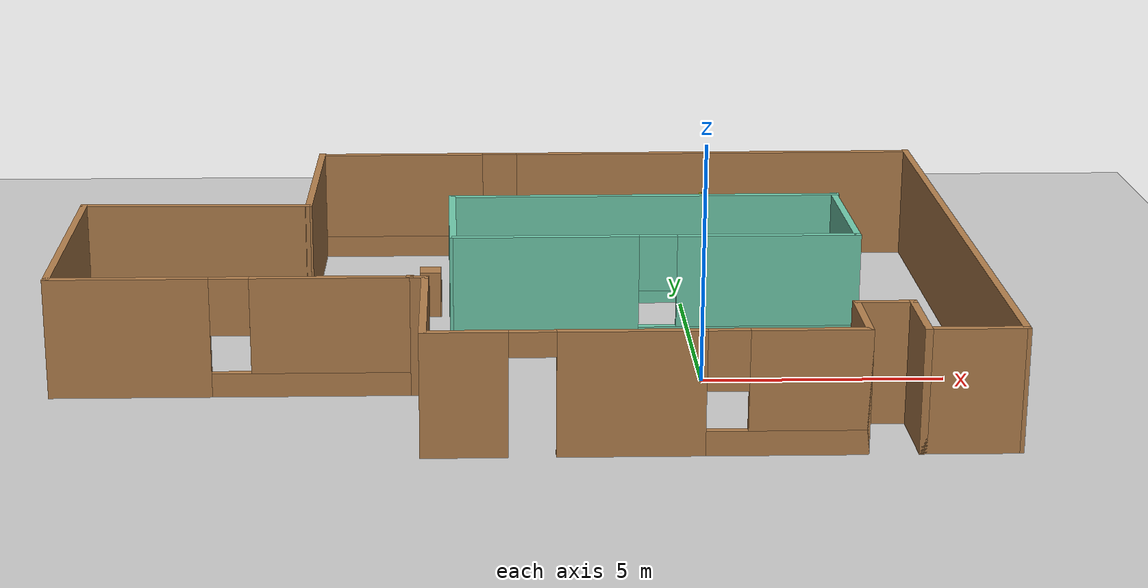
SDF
<sdf version="1.6">
 <world name="default">
  <model name="ground_plane">
   <static>1</static>
   <link name="link">
    <collision name="collision">
     <geometry><plane><normal>0 0 1</normal><size>100 100</size></plane></geometry>
     <surface><friction><ode><mu>100</mu><mu2>50</mu2></ode></friction></surface>
    </collision>
    <visual name="visual">
     <cast_shadows>0</cast_shadows>
     <geometry><plane><normal>0 0 1</normal><size>100 100</size></plane></geometry>
     <material>
      <script><uri>file://media/materials/scripts/gazebo.material</uri><name>Gazebo/Grey</name></script>
     </material>
    </visual>
   </link>
  </model>
  <model name="building">
   <pose>-3.75245 2.48047 0 0 -0 0</pose>
   <link name="Wall_1">
    <collision name="Wall_1_Collision">
     <geometry><box><size>3.5 0.15 2.5</size></box></geometry>
     <pose>0 0 1.25 0 -0 0</pose>
    </collision>
    <visual name="Wall_1_Visual">
     <pose>0 0 1.25 0 -0 0</pose>
     <geometry><box><size>3.5 0.15 2.5</size></box></geometry>
     <material>
      <script><uri>file://media/materials/scripts/gazebo.material</uri><name>Gazebo/Wood</name></script>
      <ambient>1 1 1 1</ambient>
     </material>
     <meta><layer>0</layer></meta>
    </visual>
    <pose>-1.87755 -4.85547 0 0 0 -1.5708</pose>
   </link>
   <link name="Wall_10">
    <pose>2.49783 6.46108 0 0 0 -3.13826</pose>
    <visual name="Wall_10_Visual_0">
     <pose>-2.33655 0 1.25 0 -0 0</pose>
     <geometry><box><size>9.37127 0.15 2.5</size></box></geometry>
     <material>
      <script><uri>file://media/materials/scripts/gazebo.material</uri><name>Gazebo/Wood</name></script>
      <ambient>1 1 1 1</ambient>
     </material>
     <meta><layer>0</layer></meta>
    </visual>
    <collision name="Wall_10_Collision_0">
     <geometry><box><size>9.37127 0.15 2.5</size></box></geometry>
     <pose>-2.33655 0 1.25 0 -0 0</pose>
    </collision>
    <visual name="Wall_10_Visual_1">
     <pose>4.68564 0 0.25 0 -0 0</pose>
     <geometry><box><size>4.67309 0.15 0.5</size></box></geometry>
     <material>
      <script><uri>file://media/materials/scripts/gazebo.material</uri><name>Gazebo/Wood</name></script>
      <ambient>1 1 1 1</ambient>
     </material>
     <meta><layer>0</layer></meta>
    </visual>
    <collision name="Wall_10_Collision_1">
     <geometry><box><size>4.67309 0.15 0.5</size></box></geometry>
     <pose>4.68564 0 0.25 0 -0 0</pose>
    </collision>
    <visual name="Wall_10_Visual_2">
     <pose>5.08564 0 1.5 0 -0 0</pose>
     <geometry><box><size>3.87309 0.15 2</size></box></geometry>
     <material>
      <script><uri>file://media/materials/scripts/gazebo.material</uri><name>Gazebo/Wood</name></script>
      <ambient>1 1 1 1</ambient>
     </material>
     <meta><layer>0</layer></meta>
    </visual>
    <collision name="Wall_10_Collision_2">
     <geometry><box><size>3.87309 0.15 2</size></box></geometry>
     <pose>5.08564 0 1.5 0 -0 0</pose>
    </collision>
    <visual name="Wall_10_Visual_3">
     <pose>2.74909 0 1.9 0 -0 0</pose>
     <geometry><box><size>0.8 0.15 1.2</size></box></geometry>
     <material>
      <script><uri>file://media/materials/scripts/gazebo.material</uri><name>Gazebo/Wood</name></script>
      <ambient>1 1 1 1</ambient>
     </material>
     <meta><layer>0</layer></meta>
    </visual>
    <collision name="Wall_10_Collision_3">
     <geometry><box><size>0.8 0.15 1.2</size></box></geometry>
     <pose>2.74909 0 1.9 0 -0 0</pose>
    </collision>
   </link>
   <link name="Wall_11">
    <collision name="Wall_11_Collision">
     <geometry><box><size>4.5701 0.15 2.5</size></box></geometry>
     <pose>0 0 1.25 0 -0 0</pose>
    </collision>
    <visual name="Wall_11_Visual">
     <pose>0 0 1.25 0 -0 0</pose>
     <geometry><box><size>4.5701 0.15 2.5</size></box></geometry>
     <material>
      <script><uri>file://media/materials/scripts/gazebo.material</uri><name>Gazebo/Wood</name></script>
      <ambient>1 1 1 1</ambient>
     </material>
     <meta><layer>0</layer></meta>
    </visual>
    <pose>-4.47813 4.27477 0 0 0 -1.58382</pose>
   </link>
   <link name="Wall_12">
    <collision name="Wall_12_Collision">
     <geometry><box><size>5.04168 0.15 2.5</size></box></geometry>
     <pose>0 0 1.25 0 -0 0</pose>
    </collision>
    <visual name="Wall_12_Visual">
     <pose>0 0 1.25 0 -0 0</pose>
     <geometry><box><size>5.04168 0.15 2.5</size></box></geometry>
     <material>
      <script><uri>file://media/materials/scripts/gazebo.material</uri><name>Gazebo/Wood</name></script>
      <ambient>1 1 1 1</ambient>
     </material>
     <meta><layer>0</layer></meta>
    </visual>
    <pose>-6.99831 2.12344 0 0 -0 3.11783</pose>
   </link>
   <link name="Wall_13">
    <collision name="Wall_13_Collision">
     <geometry><box><size>5.47343 0.15 2.5</size></box></geometry>
     <pose>0 0 1.25 0 -0 0</pose>
    </collision>
    <visual name="Wall_13_Visual">
     <pose>0 0 1.25 0 -0 0</pose>
     <geometry><box><size>5.47343 0.15 2.5</size></box></geometry>
     <material>
      <script><uri>file://media/materials/scripts/gazebo.material</uri><name>Gazebo/Wood</name></script>
      <ambient>1 1 1 1</ambient>
     </material>
     <meta><layer>0</layer></meta>
    </visual>
    <pose>-9.42597 -0.433839 0 0 0 -1.56422</pose>
   </link>
   <link name="Wall_14">
    <pose>-5.79302 -3.13612 0 0 -0 0.00156</pose>
    <visual name="Wall_14_Visual_0">
     <pose>-2.04094 0 1.25 0 -0 0</pose>
     <geometry><box><size>3.29907 0.15 2.5</size></box></geometry>
     <material>
      <script><uri>file://media/materials/scripts/gazebo.material</uri><name>Gazebo/Wood</name></script>
      <ambient>1 1 1 1</ambient>
     </material>
     <meta><layer>0</layer></meta>
    </visual>
    <collision name="Wall_14_Collision_0">
     <geometry><box><size>3.29907 0.15 2.5</size></box></geometry>
     <pose>-2.04094 0 1.25 0 -0 0</pose>
    </collision>
    <visual name="Wall_14_Visual_1">
     <pose>1.64953 0 0.25 0 -0 0</pose>
     <geometry><box><size>4.08187 0.15 0.5</size></box></geometry>
     <material>
      <script><uri>file://media/materials/scripts/gazebo.material</uri><name>Gazebo/Wood</name></script>
      <ambient>1 1 1 1</ambient>
     </material>
     <meta><layer>0</layer></meta>
    </visual>
    <collision name="Wall_14_Collision_1">
     <geometry><box><size>4.08187 0.15 0.5</size></box></geometry>
     <pose>1.64953 0 0.25 0 -0 0</pose>
    </collision>
    <visual name="Wall_14_Visual_2">
     <pose>2.04954 0 1.5 0 -0 0</pose>
     <geometry><box><size>3.28187 0.15 2</size></box></geometry>
     <material>
      <script><uri>file://media/materials/scripts/gazebo.material</uri><name>Gazebo/Wood</name></script>
      <ambient>1 1 1 1</ambient>
     </material>
     <meta><layer>0</layer></meta>
    </visual>
    <collision name="Wall_14_Collision_2">
     <geometry><box><size>3.28187 0.15 2</size></box></geometry>
     <pose>2.04954 0 1.5 0 -0 0</pose>
    </collision>
    <visual name="Wall_14_Visual_3">
     <pose>0.0086 0 1.9 0 -0 0</pose>
     <geometry><box><size>0.8 0.15 1.2</size></box></geometry>
     <material>
      <script><uri>file://media/materials/scripts/gazebo.material</uri><name>Gazebo/Wood</name></script>
      <ambient>1 1 1 1</ambient>
     </material>
     <meta><layer>0</layer></meta>
    </visual>
    <collision name="Wall_14_Collision_3">
     <geometry><box><size>0.8 0.15 1.2</size></box></geometry>
     <pose>0.0086 0 1.9 0 -0 0</pose>
    </collision>
   </link>
   <link name="Wall_15">
    <collision name="Wall_15_Collision">
     <geometry><box><size>0.454138 0.15 2.5</size></box></geometry>
     <pose>0 0 1.25 0 -0 0</pose>
    </collision>
    <visual name="Wall_15_Visual">
     <pose>0 0 1.25 0 -0 0</pose>
     <geometry><box><size>0.454138 0.15 2.5</size></box></geometry>
     <material>
      <script><uri>file://media/materials/scripts/gazebo.material</uri><name>Gazebo/Wood</name></script>
      <ambient>1 1 1 1</ambient>
     </material>
     <meta><layer>0</layer></meta>
    </visual>
    <pose>-2.02755 -3.15547 0 0 0 -0.165149</pose>
   </link>
   <link name="Wall_17">
    <collision name="Wall_17_Collision">
     <geometry><box><size>3.28932 0.15 2.5</size></box></geometry>
     <pose>0 0 1.25 0 -0 0</pose>
    </collision>
    <visual name="Wall_17_Visual">
     <pose>0 0 1.25 0 -0 0</pose>
     <geometry><box><size>3.28932 0.15 2.5</size></box></geometry>
     <material>
      <script><uri>file://media/materials/scripts/gazebo.material</uri><name>Gazebo/Grey</name></script>
      <ambient>0.435294 0.796078 0.67451 1</ambient>
     </material>
     <meta><layer>0</layer></meta>
    </visual>
    <pose>-1.3451 1.15404 0 0 0 -1.55965</pose>
   </link>
   <link name="Wall_18">
    <pose>2.9621 -0.409886 0 0 -0 0.001329</pose>
    <visual name="Wall_18_Visual_0">
     <pose>-2.34342 0 1.25 0 -0 0</pose>
     <geometry><box><size>3.95005 0.15 2.5</size></box></geometry>
     <material>
      <script><uri>file://media/materials/scripts/gazebo.material</uri><name>Gazebo/Grey</name></script>
      <ambient>0.435294 0.796078 0.67451 1</ambient>
     </material>
     <meta><layer>0</layer></meta>
    </visual>
    <collision name="Wall_18_Collision_0">
     <geometry><box><size>3.95005 0.15 2.5</size></box></geometry>
     <pose>-2.34342 0 1.25 0 -0 0</pose>
    </collision>
    <visual name="Wall_18_Visual_1">
     <pose>1.97503 0 0.25 0 -0 0</pose>
     <geometry><box><size>4.68684 0.15 0.5</size></box></geometry>
     <material>
      <script><uri>file://media/materials/scripts/gazebo.material</uri><name>Gazebo/Grey</name></script>
      <ambient>0.435294 0.796078 0.67451 1</ambient>
     </material>
     <meta><layer>0</layer></meta>
    </visual>
    <collision name="Wall_18_Collision_1">
     <geometry><box><size>4.68684 0.15 0.5</size></box></geometry>
     <pose>1.97503 0 0.25 0 -0 0</pose>
    </collision>
    <visual name="Wall_18_Visual_2">
     <pose>2.37503 0 1.5 0 -0 0</pose>
     <geometry><box><size>3.88684 0.15 2</size></box></geometry>
     <material>
      <script><uri>file://media/materials/scripts/gazebo.material</uri><name>Gazebo/Grey</name></script>
      <ambient>0.435294 0.796078 0.67451 1</ambient>
     </material>
     <meta><layer>0</layer></meta>
    </visual>
    <collision name="Wall_18_Collision_2">
     <geometry><box><size>3.88684 0.15 2</size></box></geometry>
     <pose>2.37503 0 1.5 0 -0 0</pose>
    </collision>
    <visual name="Wall_18_Visual_3">
     <pose>0.031604 0 1.9 0 -0 0</pose>
     <geometry><box><size>0.8 0.15 1.2</size></box></geometry>
     <material>
      <script><uri>file://media/materials/scripts/gazebo.material</uri><name>Gazebo/Grey</name></script>
      <ambient>0.435294 0.796078 0.67451 1</ambient>
     </material>
     <meta><layer>0</layer></meta>
    </visual>
    <collision name="Wall_18_Collision_3">
     <geometry><box><size>0.8 0.15 1.2</size></box></geometry>
     <pose>0.031604 0 1.9 0 -0 0</pose>
    </collision>
   </link>
   <link name="Wall_19">
    <collision name="Wall_19_Collision">
     <geometry><box><size>3.28932 0.15 2.5</size></box></geometry>
     <pose>0 0 1.25 0 -0 0</pose>
    </collision>
    <visual name="Wall_19_Visual">
     <pose>0 0 1.25 0 -0 0</pose>
     <geometry><box><size>3.28932 0.15 2.5</size></box></geometry>
     <material>
      <script><uri>file://media/materials/scripts/gazebo.material</uri><name>Gazebo/Grey</name></script>
      <ambient>0.435294 0.796078 0.67451 1</ambient>
     </material>
     <meta><layer>0</layer></meta>
    </visual>
    <pose>7.18805 1.2003 0 0 -0 1.58194</pose>
   </link>
   <link name="Wall_2">
    <pose>2.29745 -6.53047 0 0 -0 0</pose>
    <visual name="Wall_2_Visual_0">
     <pose>-3.41172 0 1.25 0 -0 0</pose>
     <geometry><box><size>1.67657 0.15 2.5</size></box></geometry>
     <material>
      <script><uri>file://media/materials/scripts/gazebo.material</uri><name>Gazebo/Wood</name></script>
      <ambient>1 1 1 1</ambient>
     </material>
     <meta><layer>0</layer></meta>
    </visual>
    <collision name="Wall_2_Collision_0">
     <geometry><box><size>1.67657 0.15 2.5</size></box></geometry>
     <pose>-3.41172 0 1.25 0 -0 0</pose>
    </collision>
    <visual name="Wall_2_Visual_1">
     <pose>-0.26302 0 1.25 0 -0 0</pose>
     <geometry><box><size>2.82083 0.15 2.5</size></box></geometry>
     <material>
      <script><uri>file://media/materials/scripts/gazebo.material</uri><name>Gazebo/Wood</name></script>
      <ambient>1 1 1 1</ambient>
     </material>
     <meta><layer>0</layer></meta>
    </visual>
    <collision name="Wall_2_Collision_1">
     <geometry><box><size>2.82083 0.15 2.5</size></box></geometry>
     <pose>-0.26302 0 1.25 0 -0 0</pose>
    </collision>
    <visual name="Wall_2_Visual_2">
     <pose>2.6987 0 0.25 0 -0 0</pose>
     <geometry><box><size>3.10261 0.15 0.5</size></box></geometry>
     <material>
      <script><uri>file://media/materials/scripts/gazebo.material</uri><name>Gazebo/Wood</name></script>
      <ambient>1 1 1 1</ambient>
     </material>
     <meta><layer>0</layer></meta>
    </visual>
    <collision name="Wall_2_Collision_2">
     <geometry><box><size>3.10261 0.15 0.5</size></box></geometry>
     <pose>2.6987 0 0.25 0 -0 0</pose>
    </collision>
    <visual name="Wall_2_Visual_3">
     <pose>3.0987 0 1.5 0 -0 0</pose>
     <geometry><box><size>2.30261 0.15 2</size></box></geometry>
     <material>
      <script><uri>file://media/materials/scripts/gazebo.material</uri><name>Gazebo/Wood</name></script>
      <ambient>1 1 1 1</ambient>
     </material>
     <meta><layer>0</layer></meta>
    </visual>
    <collision name="Wall_2_Collision_3">
     <geometry><box><size>2.30261 0.15 2</size></box></geometry>
     <pose>3.0987 0 1.5 0 -0 0</pose>
    </collision>
    <visual name="Wall_2_Visual_4">
     <pose>1.54739 0 1.9 0 -0 0</pose>
     <geometry><box><size>0.8 0.15 1.2</size></box></geometry>
     <material>
      <script><uri>file://media/materials/scripts/gazebo.material</uri><name>Gazebo/Wood</name></script>
      <ambient>1 1 1 1</ambient>
     </material>
     <meta><layer>0</layer></meta>
    </visual>
    <collision name="Wall_2_Collision_4">
     <geometry><box><size>0.8 0.15 1.2</size></box></geometry>
     <pose>1.54739 0 1.9 0 -0 0</pose>
    </collision>
    <visual name="Wall_2_Visual_5">
     <pose>-2.12343 0 2.25 0 -0 0</pose>
     <geometry><box><size>0.9 0.15 0.5</size></box></geometry>
     <material>
      <script><uri>file://media/materials/scripts/gazebo.material</uri><name>Gazebo/Wood</name></script>
      <ambient>1 1 1 1</ambient>
     </material>
     <meta><layer>0</layer></meta>
    </visual>
    <collision name="Wall_2_Collision_5">
     <geometry><box><size>0.9 0.15 0.5</size></box></geometry>
     <pose>-2.12343 0 2.25 0 -0 0</pose>
    </collision>
   </link>
   <link name="Wall_20">
    <collision name="Wall_20_Collision">
     <geometry><box><size>8.67188 0.15 2.5</size></box></geometry>
     <pose>0 0 1.25 0 -0 0</pose>
    </collision>
    <visual name="Wall_20_Visual">
     <pose>0 0 1.25 0 -0 0</pose>
     <geometry><box><size>8.67188 0.15 2.5</size></box></geometry>
     <material>
      <script><uri>file://media/materials/scripts/gazebo.material</uri><name>Gazebo/Grey</name></script>
      <ambient>0.435294 0.796078 0.67451 1</ambient>
     </material>
     <meta><layer>0</layer></meta>
    </visual>
    <pose>2.94461 2.72924 0 0 0 -3.14027</pose>
   </link>
   <link name="Wall_3">
    <collision name="Wall_3_Collision">
     <geometry><box><size>1.75 0.15 2.5</size></box></geometry>
     <pose>0 0 1.25 0 -0 0</pose>
    </collision>
    <visual name="Wall_3_Visual">
     <pose>0 0 1.25 0 -0 0</pose>
     <geometry><box><size>1.75 0.15 2.5</size></box></geometry>
     <material>
      <script><uri>file://media/materials/scripts/gazebo.material</uri><name>Gazebo/Wood</name></script>
      <ambient>1 1 1 1</ambient>
     </material>
     <meta><layer>0</layer></meta>
    </visual>
    <pose>6.47245 -5.73047 0 0 -0 1.5708</pose>
   </link>
   <link name="Wall_4">
    <collision name="Wall_4_Collision">
     <geometry><box><size>1.25 0.15 2.5</size></box></geometry>
     <pose>0 0 1.25 0 -0 0</pose>
    </collision>
    <visual name="Wall_4_Visual">
     <pose>0 0 1.25 0 -0 0</pose>
     <geometry><box><size>1.25 0.15 2.5</size></box></geometry>
     <material>
      <script><uri>file://media/materials/scripts/gazebo.material</uri><name>Gazebo/Wood</name></script>
      <ambient>1 1 1 1</ambient>
     </material>
     <meta><layer>0</layer></meta>
    </visual>
    <pose>7.02245 -4.93047 0 0 -0 0</pose>
   </link>
   <link name="Wall_5">
    <collision name="Wall_5_Collision">
     <geometry><box><size>1.75 0.15 2.5</size></box></geometry>
     <pose>0 0 1.25 0 -0 0</pose>
    </collision>
    <visual name="Wall_5_Visual">
     <pose>0 0 1.25 0 -0 0</pose>
     <geometry><box><size>1.75 0.15 2.5</size></box></geometry>
     <material>
      <script><uri>file://media/materials/scripts/gazebo.material</uri><name>Gazebo/Wood</name></script>
      <ambient>1 1 1 1</ambient>
     </material>
     <meta><layer>0</layer></meta>
    </visual>
    <pose>7.57245 -5.73047 0 0 0 -1.5708</pose>
   </link>
   <link name="Wall_6">
    <collision name="Wall_6_Collision">
     <geometry><box><size>2 0.15 2.5</size></box></geometry>
     <pose>0 0 1.25 0 -0 0</pose>
    </collision>
    <visual name="Wall_6_Visual">
     <pose>0 0 1.25 0 -0 0</pose>
     <geometry><box><size>2 0.15 2.5</size></box></geometry>
     <material>
      <script><uri>file://media/materials/scripts/gazebo.material</uri><name>Gazebo/Wood</name></script>
      <ambient>1 1 1 1</ambient>
     </material>
     <meta><layer>0</layer></meta>
    </visual>
    <pose>8.49745 -6.53047 0 0 -0 0</pose>
   </link>
   <link name="Wall_7">
    <collision name="Wall_7_Collision">
     <geometry><box><size>13.211 0.15 2.5</size></box></geometry>
     <pose>0 0 1.25 0 -0 0</pose>
    </collision>
    <visual name="Wall_7_Visual">
     <pose>0 0 1.25 0 -0 0</pose>
     <geometry><box><size>13.211 0.15 2.5</size></box></geometry>
     <material>
      <script><uri>file://media/materials/scripts/gazebo.material</uri><name>Gazebo/Wood</name></script>
      <ambient>1 1 1 1</ambient>
     </material>
     <meta><layer>0</layer></meta>
    </visual>
    <pose>9.43373 0 0 0 -0 1.56907</pose>
   </link>
   <static>1</static>
  </model>
  <model name="cabinet">
   <static>1</static>
   <link name="cabinet_bottom_plate">
    <inertial>
     <pose>0 0 -1 0 -0 0</pose>
     <inertia><ixx>2.05</ixx><ixy>0</ixy><ixz>0</ixz><iyy>2.05</iyy><iyz>0</iyz><izz>2.05</izz></inertia>
     <mass>25</mass>
    </inertial>
    <collision name="cabinet_bottom_plate_geom">
     <pose>0 0 0.01 0 -0 0</pose>
     <geometry><box><size>0.45 0.45 0.02</size></box></geometry>
    </collision>
    <visual name="cabinet_bottom_plate_geom_visual">
     <pose>0 0 0.01 0 -0 0</pose>
     <geometry><box><size>0.45 0.45 0.02</size></box></geometry>
     <material>
      <script><uri>file://media/materials/scripts/gazebo.material</uri><name>Gazebo/Wood</name></script>
     </material>
    </visual>
    <collision name="cabinet_bottom_plate_geom_cabinet_back_plate">
     <pose>0.235 0 0.51 0 -0 0</pose>
     <geometry><box><size>0.02 0.45 1.02</size></box></geometry>
    </collision>
    <visual name="cabinet_bottom_plate_geom_cabinet_back_plate_visual">
     <pose>0.235 0 0.51 0 -0 0</pose>
     <geometry><box><size>0.02 0.45 1.02</size></box></geometry>
     <material>
      <script><uri>file://media/materials/scripts/gazebo.material</uri><name>Gazebo/Wood</name></script>
     </material>
    </visual>
    <collision name="cabinet_bottom_plate_geom_cabinet_left_plate">
     <pose>0 0.235 0.51 0 -0 0</pose>
     <geometry><box><size>0.45 0.02 1.02</size></box></geometry>
    </collision>
    <visual name="cabinet_bottom_plate_geom_cabinet_left_plate_visual">
     <pose>0 0.235 0.51 0 -0 0</pose>
     <geometry><box><size>0.45 0.02 1.02</size></box></geometry>
     <material>
      <script><uri>file://media/materials/scripts/gazebo.material</uri><name>Gazebo/Wood</name></script>
     </material>
    </visual>
    <collision name="cabinet_bottom_plate_geom_cabinet_middle_plate">
     <pose>0 0 0.51 0 -0 0</pose>
     <geometry><box><size>0.45 0.45 0.02</size></box></geometry>
    </collision>
    <visual name="cabinet_bottom_plate_geom_cabinet_middle_plate_visual">
     <pose>0 0 0.51 0 -0 0</pose>
     <geometry><box><size>0.45 0.45 0.02</size></box></geometry>
     <material>
      <script><uri>file://media/materials/scripts/gazebo.material</uri><name>Gazebo/Wood</name></script>
     </material>
    </visual>
    <collision name="cabinet_bottom_plate_geom_cabinet_right_plate">
     <pose>0 -0.235 0.51 0 -0 0</pose>
     <geometry><box><size>0.45 0.02 1.02</size></box></geometry>
    </collision>
    <visual name="cabinet_bottom_plate_geom_cabinet_right_plate_visual">
     <pose>0 -0.235 0.51 0 -0 0</pose>
     <geometry><box><size>0.45 0.02 1.02</size></box></geometry>
     <material>
      <script><uri>file://media/materials/scripts/gazebo.material</uri><name>Gazebo/Wood</name></script>
     </material>
    </visual>
    <collision name="cabinet_bottom_plate_geom_cabinet_top_plate">
     <pose>0 0 1.01 0 -0 0</pose>
     <geometry><box><size>0.45 0.45 0.02</size></box></geometry>
    </collision>
    <visual name="cabinet_bottom_plate_geom_cabinet_top_plate_visual">
     <pose>0 0 1.01 0 -0 0</pose>
     <geometry><box><size>0.45 0.45 0.02</size></box></geometry>
     <material>
      <script><uri>file://media/materials/scripts/gazebo.material</uri><name>Gazebo/Wood</name></script>
     </material>
    </visual>
   </link>
   <pose>-5.60335 4.48604 0 0 -0 0</pose>
  </model>
  <model name="simple_arm">
   <link name="arm_base">
    <inertial>
     <pose>0 0 0.00099 0 -0 0</pose>
     <inertia><ixx>1.11</ixx><ixy>0</ixy><ixz>0</ixz><iyy>100.11</iyy><iyz>0</iyz><izz>1.01</izz></inertia>
     <mass>101</mass>
    </inertial>
    <collision name="arm_base_geom">
     <pose>0 0 0.05 0 -0 0</pose>
     <geometry><box><size>1 1 0.1</size></box></geometry>
    </collision>
    <visual name="arm_base_geom_visual">
     <pose>0 0 0.05 0 -0 0</pose>
     <geometry><box><size>1 1 0.1</size></box></geometry>
     <material>
      <script><uri>file://media/materials/scripts/gazebo.material</uri><name>Gazebo/Blue</name></script>
     </material>
    </visual>
    <collision name="arm_base_geom_arm_trunk">
     <pose>0 0 0.6 0 -0 0</pose>
     <geometry><cylinder><radius>0.05</radius><length>1</length></cylinder></geometry>
    </collision>
    <visual name="arm_base_geom_arm_trunk_visual">
     <pose>0 0 0.6 0 -0 0</pose>
     <geometry><cylinder><radius>0.05</radius><length>1</length></cylinder></geometry>
     <material>
      <script><uri>file://media/materials/scripts/gazebo.material</uri><name>Gazebo/Red</name></script>
     </material>
    </visual>
   </link>
   <link name="arm_shoulder_pan">
    <pose>0 0 1.1 0 -0 0</pose>
    <inertial>
     <pose>0.045455 0 0 0 -0 0</pose>
     <inertia><ixx>0.011</ixx><ixy>0</ixy><ixz>0</ixz><iyy>0.0225</iyy><iyz>0</iyz><izz>0.0135</izz></inertia>
     <mass>1.1</mass>
    </inertial>
    <collision name="arm_shoulder_pan_geom">
     <pose>0 0 0.05 0 -0 0</pose>
     <geometry><cylinder><radius>0.05</radius><length>0.1</length></cylinder></geometry>
    </collision>
    <visual name="arm_shoulder_pan_geom_visual">
     <pose>0 0 0.05 0 -0 0</pose>
     <geometry><cylinder><radius>0.05</radius><length>0.1</length></cylinder></geometry>
     <material>
      <script><uri>file://media/materials/scripts/gazebo.material</uri><name>Gazebo/Yellow</name></script>
     </material>
    </visual>
    <collision name="arm_shoulder_pan_geom_arm_shoulder">
     <pose>0.55 0 0.05 0 -0 0</pose>
     <geometry><box><size>1 0.05 0.1</size></box></geometry>
    </collision>
    <visual name="arm_shoulder_pan_geom_arm_shoulder_visual">
     <pose>0.55 0 0.05 0 -0 0</pose>
     <geometry><box><size>1 0.05 0.1</size></box></geometry>
     <material>
      <script><uri>file://media/materials/scripts/gazebo.material</uri><name>Gazebo/Yellow</name></script>
     </material>
    </visual>
   </link>
   <link name="arm_elbow_pan">
    <pose>1.05 0 1.1 0 -0 0</pose>
    <inertial>
     <pose>0.0875 0 0.083333 0 -0 0</pose>
     <inertia>
      <ixx>0.031</ixx>
      <ixy>0</ixy>
      <ixz>0.005</ixz>
      <iyy>0.07275</iyy>
      <iyz>0</iyz>
      <izz>0.04475</izz>
     </inertia>
     <mass>1.2</mass>
    </inertial>
    <collision name="arm_elbow_pan_geom">
     <pose>0 0 0.1 0 -0 0</pose>
     <geometry><cylinder><radius>0.05</radius><length>0.2</length></cylinder></geometry>
    </collision>
    <visual name="arm_elbow_pan_geom_visual">
     <pose>0 0 0.1 0 -0 0</pose>
     <geometry><cylinder><radius>0.05</radius><length>0.2</length></cylinder></geometry>
     <material>
      <script><uri>file://media/materials/scripts/gazebo.material</uri><name>Gazebo/Red</name></script>
     </material>
    </visual>
    <collision name="arm_elbow_pan_geom_arm_elbow">
     <pose>0.3 0 0.15 0 -0 0</pose>
     <geometry><box><size>0.5 0.03 0.1</size></box></geometry>
    </collision>
    <visual name="arm_elbow_pan_geom_arm_elbow_visual">
     <pose>0.3 0 0.15 0 -0 0</pose>
     <geometry><box><size>0.5 0.03 0.1</size></box></geometry>
     <material>
      <script><uri>file://media/materials/scripts/gazebo.material</uri><name>Gazebo/Yellow</name></script>
     </material>
    </visual>
    <collision name="arm_elbow_pan_geom_arm_wrist">
     <pose>0.55 0 0.15 0 -0 0</pose>
     <geometry><cylinder><radius>0.05</radius><length>0.3</length></cylinder></geometry>
    </collision>
    <visual name="arm_elbow_pan_geom_arm_wrist_visual">
     <pose>0.55 0 0.15 0 -0 0</pose>
     <geometry><cylinder><radius>0.05</radius><length>0.3</length></cylinder></geometry>
     <material>
      <script><uri>file://media/materials/scripts/gazebo.material</uri><name>Gazebo/Red</name></script>
     </material>
    </visual>
   </link>
   <link name="arm_wrist_lift">
    <pose>1.6 0 1.05 0 -0 0</pose>
    <inertial>
     <inertia><ixx>0.01</ixx><ixy>0</ixy><ixz>0</ixz><iyy>0.01</iyy><iyz>0</iyz><izz>0.001</izz></inertia>
     <mass>0.1</mass>
    </inertial>
    <collision name="arm_wrist_lift_geom">
     <pose>0 0 0.5 0 -0 0</pose>
     <geometry><cylinder><radius>0.03</radius><length>1</length></cylinder></geometry>
    </collision>
    <visual name="arm_wrist_lift_geom_visual">
     <pose>0 0 0.5 0 -0 0</pose>
     <geometry><cylinder><radius>0.03</radius><length>1</length></cylinder></geometry>
     <material>
      <script><uri>file://media/materials/scripts/gazebo.material</uri><name>Gazebo/Yellow</name></script>
     </material>
    </visual>
   </link>
   <link name="arm_wrist_roll">
    <pose>1.6 0 1 0 -0 0</pose>
    <inertial>
     <inertia><ixx>0.01</ixx><ixy>0</ixy><ixz>0</ixz><iyy>0.01</iyy><iyz>0</iyz><izz>0.001</izz></inertia>
     <mass>0.1</mass>
    </inertial>
    <collision name="arm_wrist_roll_geom">
     <pose>0 0 0.025 0 -0 0</pose>
     <geometry><cylinder><radius>0.05</radius><length>0.05</length></cylinder></geometry>
    </collision>
    <visual name="arm_wrist_roll_geom_visual">
     <pose>0 0 0.025 0 -0 0</pose>
     <geometry><cylinder><radius>0.05</radius><length>0.05</length></cylinder></geometry>
     <material>
      <script><uri>file://media/materials/scripts/gazebo.material</uri><name>Gazebo/Red</name></script>
     </material>
    </visual>
   </link>
   <joint name="arm_shoulder_pan_joint" type="revolute">
    <parent>arm_base</parent>
    <child>arm_shoulder_pan</child>
    <axis>
     <dynamics>
      <damping>1</damping>
      <friction>0</friction>
      <spring_reference>0</spring_reference>
      <spring_stiffness>0</spring_stiffness>
     </dynamics>
     <xyz>0 0 1</xyz>
     <use_parent_model_frame>1</use_parent_model_frame>
     <limit><lower>-1e+16</lower><upper>1e+16</upper></limit>
    </axis>
   </joint>
   <joint name="arm_elbow_pan_joint" type="revolute">
    <parent>arm_shoulder_pan</parent>
    <child>arm_elbow_pan</child>
    <axis>
     <dynamics>
      <damping>1</damping>
      <friction>0</friction>
      <spring_reference>0</spring_reference>
      <spring_stiffness>0</spring_stiffness>
     </dynamics>
     <xyz>0 0 1</xyz>
     <use_parent_model_frame>1</use_parent_model_frame>
     <limit><lower>-1e+16</lower><upper>1e+16</upper></limit>
    </axis>
   </joint>
   <joint name="arm_wrist_lift_joint" type="prismatic">
    <parent>arm_elbow_pan</parent>
    <child>arm_wrist_lift</child>
    <axis>
     <dynamics>
      <damping>1</damping>
      <friction>0</friction>
      <spring_reference>0</spring_reference>
      <spring_stiffness>0</spring_stiffness>
     </dynamics>
     <limit><lower>-0.8</lower><upper>0.1</upper></limit>
     <xyz>0 0 1</xyz>
     <use_parent_model_frame>1</use_parent_model_frame>
    </axis>
   </joint>
   <joint name="arm_wrist_roll_joint" type="revolute">
    <parent>arm_wrist_lift</parent>
    <child>arm_wrist_roll</child>
    <axis>
     <dynamics>
      <damping>1</damping>
      <friction>0</friction>
      <spring_reference>0</spring_reference>
      <spring_stiffness>0</spring_stiffness>
     </dynamics>
     <limit><lower>-2.99999</lower><upper>2.99999</upper></limit>
     <xyz>0 0 1</xyz>
     <use_parent_model_frame>1</use_parent_model_frame>
    </axis>
   </joint>
   <pose>-0.996747 7.04698 0 0 0 -0.00051</pose>
  </model>
 </world>
</sdf>
